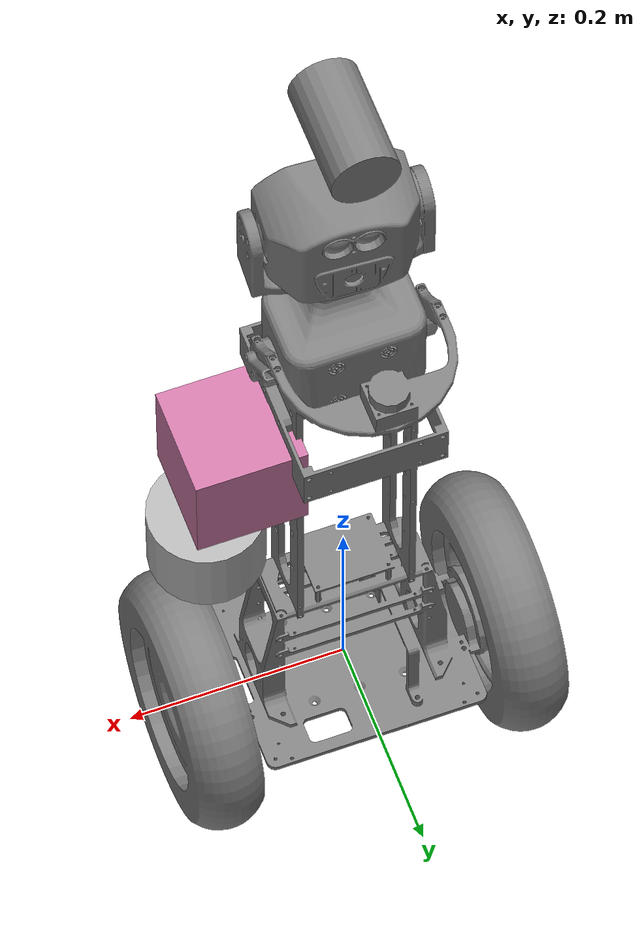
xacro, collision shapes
<?xml version="1.0" encoding="utf-8"?>
<robot name="final" xmlns:xacro="http://www.ros.org/wiki/xacro">
  <!-- Include robot URDF definitions -->
  <xacro:include filename="robot_urdf.xacro"/>

  <!-- Include transmission definitions -->
  <xacro:include filename="transmision.xacro"/>

  <!-- Include Gazebo plugins definitions -->
  <xacro:include filename="gazebo_plugins.xacro"/>
    <xacro:include filename="$(find velodyne_description)/urdf/VLP-16.urdf.xacro"/>
  <xacro:VLP-16 parent="H" name="velodyne" topic="/velodyne_points" hz="10" samples="360" gpu="true" min_angle="-3.14" max_angle="3.14" min_range="0.1">
    <origin xyz="0.125 0 0.25" rpy="0 0 1.57" />
  </xacro:VLP-16>
</robot>

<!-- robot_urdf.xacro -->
<robot xmlns:xacro="http://www.ros.org/wiki/xacro">
  <!-- Include the camera Xacro file -->
  <xacro:include filename="camera.xacro"/>

  <!-- Include the Hokuyo laser Xacro file -->
  <xacro:include filename="hokuyo_gpu.xacro"/>

  <!-- Define the camera macro with topic name -->
  <xacro:cam name="camera" parent="H" xyz="0 0 0.85" rpy="0 0 1.57" topic_name="camera/image_raw"/>

  <!-- Base link -->
  <link name="base_link">
    <inertial>
      <origin xyz="0 0 0" rpy="0 0 0"/>
      <mass value="1.36136077855937"/>
      <inertia ixx="0.081967334564842" ixy="-3.4210723680635E-06" ixz="-3.91284547047023E-05" iyy="0.0884786743192248" iyz="-0.00231861382459098" izz="0.0107270419219255"/>
    </inertial>
    <visual>
      <origin xyz="0 0 0" rpy="0 0 0"/>
      <geometry>
        <mesh filename="package://final/meshes/base_link.STL"/>
      </geometry>
      <material name="grey"/>
    </visual>
    <collision>
      <origin xyz="0 0 0" rpy="0 0 0"/>
      <geometry>
        <mesh filename="package://final/meshes/base_link.STL"/>
      </geometry>
    </collision>
  </link>

  <!-- Right wheel -->
  <link name="RW">
    <inertial>
      <origin xyz="0 0 0" rpy="0 0 0"/>
      <mass value="1.66362187408782"/>
      <inertia ixx="0.0149331440705645" ixy="-7.0310527599993E-19" ixz="-3.56400971635067E-17" iyy="0.00789937751316691" iyz="-1.07234377907859E-18" izz="0.00789937751316691"/>
    </inertial>
    <visual>
      <origin xyz="0 0 0" rpy="0 0 0"/>
      <geometry>
        <mesh filename="package://final/meshes/RW.STL"/>
      </geometry>
      <material name="grey"/>
    </visual>
    <collision>
      <origin xyz="0 0 0" rpy="0 0 0"/>
      <geometry>
        <mesh filename="package://final/meshes/RW.STL"/>
      </geometry>
    </collision>
  </link>
  <joint name="RWJ" type="continuous">
    <origin xyz="0 0 0" rpy="0 0 0"/>
    <parent link="base_link"/>
    <child link="RW"/>
    <axis xyz="-1 0 0"/>
    <hardwareInterface>EffortJointInterface</hardwareInterface>
  </joint>

  <!-- Left wheel -->
  <link name="LW">
    <inertial>
      <origin xyz="0 0 0" rpy="0 0 0"/>
      <mass value="1.66362187408782"/>
      <inertia ixx="0.0149331440705645" ixy="-1.65714609173788E-17" ixz="-3.18068539323175E-17" iyy="0.00789937751316691" iyz="8.92935627369466E-19" izz="0.00789937751316691"/>
    </inertial>
    <visual>
      <origin xyz="0 0 0" rpy="0 0 0"/>
      <geometry>
        <mesh filename="package://final/meshes/LW.STL"/>
      </geometry>
      <material name="grey"/>
    </visual>
    <collision>
      <origin xyz="0 0 0" rpy="0 0 0"/>
      <geometry>
        <mesh filename="package://final/meshes/LW.STL"/>
      </geometry>
    </collision>
  </link>
  <joint name="LWJ" type="continuous">
    <origin xyz="0 0 0" rpy="0 0 0"/>
    <parent link="base_link"/>
    <child link="LW"/>
    <axis xyz="-1 0 0"/>
    <hardwareInterface>EffortJointInterface</hardwareInterface>
  </joint>

  <!-- H link -->
  <link name="H">
    <inertial>
      <origin xyz="0 0 0" rpy="0 0 0"/>
      <mass value="0.44614352354859"/>
      <inertia ixx="0.000652294754639145" ixy="4.03458294640683E-05" ixz="3.77748545659174E-06" iyy="0.00124994464758745" iyz="-8.60157885805727E-06" izz="0.00109660895945627"/>
    </inertial>
    <visual>
      <origin xyz="0 0 0" rpy="0 0 0"/>
      <geometry>
        <mesh filename="package://final/meshes/H.STL"/>
      </geometry>
      <material name="grey"/>
    </visual>
    <collision>
      <origin xyz="0 0 0" rpy="0 0 0"/>
      <geometry>
        <mesh filename="package://final/meshes/H.STL"/>
      </geometry>
    </collision>
  </link>
  <joint name="HJ" type="continuous">
    <origin xyz="0 0 0" rpy="0 0 0"/>
    <parent link="base_link"/>
    <child link="H"/>
    <axis xyz="0 0 1"/>
    <hardwareInterface>PositionJointInterface</hardwareInterface>
  </joint>

  <!-- Camera link -->
  <link name="camera_link">
    <inertial>
      <origin xyz="0 0 0" rpy="0 0 1.57"/>
      <mass value="0.0"/>
      <inertia ixx="0.001" ixy="0" ixz="0" iyy="0.001" iyz="0" izz="0.001"/>
    </inertial>
    <visual>
      <origin xyz="0 0 0" rpy="0 0 1.57"/>
      <geometry>
        <box size="0 0 0"/>
      </geometry>
      <material name="grey">
        <color rgba="0.5 0.5 0.5 1"/>
      </material>
    </visual>
    <collision>
      <origin xyz="0 0 0" rpy="0 0 1.57"/>
      <geometry>
        <box size="0 0 0"/>
      </geometry>
    </collision>
  </link>
  <joint name="camera_joint" type="fixed">
    <origin xyz="0 0 1" rpy="0 0 0"/>
    <parent link="H"/>
    <child link="camera_link"/>
  </joint>

  <!-- Hokuyo Laser link -->
  <xacro:laser_gpu name="hokuyo_link" parent="H" xyz="0.1 0.0 0.4" rpy="0 0 0" meshes="$(find final)/meshes">
    <!-- Adjust xyz and rpy values as per your robot model -->
  </xacro:laser_gpu>
</robot>

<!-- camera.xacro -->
<robot xmlns:xacro="http://www.ros.org/wiki/xacro">

  <!-- Camera -->
  <xacro:macro name="cam" params="name parent xyz rpy topic_name">

    <joint name="${parent}_${name}_joint" type="fixed">
      <axis xyz="0 0 1" />
      <origin xyz="${xyz}" rpy="${rpy}"/>
      <parent link="${parent}"/>
      <child link="${name}"/>
    </joint>

    <!-- Camera -->
    <link name="${name}">
      <inertial>
        <mass value="1e-5" />
        <origin xyz="0 0 0" rpy="0 0 0"/>
        <inertia ixx="1e-6" ixy="0" ixz="0" iyy="1e-6" iyz="0" izz="1e-6" />
      </inertial>
      <visual>
        <origin xyz="0 0 0" rpy="0 1.57 0"/>
        <geometry>
          <cylinder radius="0.03" length="0.1"/>
        </geometry>
        <material name="grey"/>
      </visual>
      <collision>
        <origin xyz="0 0 0" rpy="0 1.57 0"/>
        <geometry>
          <cylinder radius="0.03" length="0.1"/>
        </geometry>
      </collision>
    </link>
    <gazebo reference="${name}">
      <material value="Gazebo/Grey"/>
    </gazebo>

    <gazebo reference="${name}">
      <sensor type="camera" name="camera1">
        <update_rate>30.0</update_rate>
        <camera name="head">
          <horizontal_fov>1.92</horizontal_fov>
          <image>
            <width>512</width>
            <height>256</height>
            <format>R8G8B8</format>
          </image>
          <clip>
            <near>0.02</near>
            <far>300</far>
          </clip>
          <noise>
            <type>gaussian</type>
            <mean>0.0</mean>
            <stddev>0.007</stddev>
          </noise>
        </camera>
        <plugin name="camera_controller" filename="libgazebo_ros_camera.so">
          <robotNamespace></robotNamespace>
          <alwaysOn>true</alwaysOn>
          <updateRate>0.0</updateRate>
          <cameraName>${name}</cameraName>
          <imageTopicName>${topic_name}</imageTopicName>
          <cameraInfoTopicName>camera_info</cameraInfoTopicName>
          <frameName>${name}</frameName>
          <hackBaseline>0.07</hackBaseline>
          <distortionK1>0.0</distortionK1>
          <distortionK2>0.0</distortionK2>
          <distortionK3>0.0</distortionK3>
          <distortionT1>0.0</distortionT1>
          <distortionT2>0.0</distortionT2>
        </plugin>
      </sensor>
    </gazebo>

  </xacro:macro>
</robot>

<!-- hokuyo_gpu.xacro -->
<robot xmlns:xacro="http://www.ros.org/wiki/xacro">

<!-- Front Laser -->
<xacro:macro name="laser_gpu" params="name parent xyz rpy meshes" >

  <joint name="${parent}_${name}_joint" type="fixed">
      <axis xyz="0 0 1" />
      <origin xyz="${xyz}" rpy="${rpy}"/>
      <parent link="${parent}"/>
      <child link="${name}"/>
    </joint>

    <link name="${name}">
      <collision>
        <origin xyz="0 0 0" rpy="0 0 0"/>
        <geometry>
          <box size="0.1 0.1 0.1"/>
        </geometry>
      </collision>
      <visual>
        <origin xyz="0 0 0" rpy="0 0 0"/>
        <geometry>
          <mesh filename="package://final/meshes/hokuyo.dae"/>
        </geometry>
      </visual>
      <inertial>
        <mass value="1e-5" />
        <origin xyz="0 0 0" rpy="0 0 0"/>
        <inertia ixx="1e-6" ixy="0" ixz="0" iyy="1e-6" iyz="0" izz="1e-6" />
      </inertial>
    </link>

    <gazebo reference="${name}">
    <sensor type="gpu_ray" name="head_hokuyo_sensor">
      <pose>0 0 0 0 0 0</pose>
      <always_on>1</always_on>
      <update_rate>30</update_rate>
      <visualize>true</visualize>
      <ray>
        <scan>
          <horizontal>
            <resolution>1</resolution>
            <max_angle>2.0944</max_angle> <!-- 120 Degree -->
            <min_angle>-2.0944</min_angle> <!-- -120 Degree -->
            <samples>683</samples>
          </horizontal>
        </scan>
        <range>
          <min>0.05</min>
          <max>100</max>
          <resolution>0.01</resolution>
        </range>
        <noise>
          <type>gaussian</type>
          <mean>0.0</mean>
          <stddev>0.01</stddev>
        </noise>
      </ray>
      <plugin name="gazebo_ros_head_hokuyo_controller" filename="libgazebo_ros_gpu_laser.so">
        <robotNamespace></robotNamespace>
        <topicName>scan</topicName> <!-- Specify the topic name here -->
        <frameName>${name}</frameName>
      </plugin>
    </sensor>
    </gazebo>

</xacro:macro>

</robot>

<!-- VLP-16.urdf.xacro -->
<robot xmlns:xacro="http://www.ros.org/wiki/xacro" name="VLP-16">
  <xacro:property name="M_PI" value="3.1415926535897931" />
  <xacro:macro name="VLP-16" params="*origin parent:=base_link name:=velodyne topic:=/velodyne_points hz:=10 lasers:=16 samples:=1875 collision_range:=0.3 min_range:=0.9 max_range:=130.0 noise:=0.008 min_angle:=-${M_PI} max_angle:=${M_PI} gpu:=false">

    <joint name="${name}_base_mount_joint" type="fixed">
      <xacro:insert_block name="origin" />
      <parent link="${parent}"/>
      <child link="${name}_base_link"/>
    </joint>

    <link name="${name}_base_link">
      <inertial>
        <mass value="0"/>
        <origin xyz="0 0 0.03585"/>
        <inertia ixx="${(0.01 * (3.0*0.0516*0.0516 + 0.0717*0.0717)) / 12.0}" ixy="0" ixz="0"
          iyy="${(0.01 * (3.0*0.0516*0.0516 + 0.0717*0.0717)) / 12.0}" iyz="0"
          izz="${0.5 * 0.01 * (0.0516*0.0516)}"/>
      </inertial>
      <visual>
        <geometry>
          <mesh filename="package://velodyne_description/meshes/VLP16_base_1.dae" />
        </geometry>
      </visual>
      <visual>
        <geometry>
          <mesh filename="package://velodyne_description/meshes/VLP16_base_2.dae" />
        </geometry>
      </visual>
      <collision>
        <origin rpy="0 0 0" xyz="0 0 0.03585"/>
        <geometry>
          <cylinder radius="0.0516" length="0.0717"/>
        </geometry>
      </collision>
    </link>

    <joint name="${name}_base_scan_joint" type="fixed" >
      <origin xyz="0 0 0.0377" rpy="0 0 0" />
      <parent link="${name}_base_link" />
      <child link="${name}"/>
    </joint>

    <link name="${name}">
      <inertial>
        <mass value="0"/>
        <origin xyz="0 0 0"/>
        <inertia ixx="1e-7" ixy="0" ixz="0" iyy="1e-7" iyz="0" izz="1e-7"/>
      </inertial>
      <visual>
        <origin xyz="0 0 -0.0377" />
        <geometry>
          <mesh filename="package://velodyne_description/meshes/VLP16_scan.dae" />
        </geometry>
      </visual>
    </link>

    <!-- Gazebo requires the velodyne_gazebo_plugins package -->
    <gazebo reference="${name}">
      <xacro:if value="${gpu}">
        <sensor type="gpu_ray" name="${name}-VLP16">
          <pose>0 0 0 0 0 0</pose>
          <visualize>false</visualize>
          <update_rate>${hz}</update_rate>
          <ray>
            <scan>
              <horizontal>
                <samples>${samples}</samples>
                <resolution>1</resolution>
                <min_angle>${min_angle}</min_angle>
                <max_angle>${max_angle}</max_angle>
              </horizontal>
              <vertical>
                <samples>${lasers}</samples>
                <resolution>1</resolution>
                <min_angle>-${15.0*M_PI/180.0}</min_angle>
                <max_angle> ${15.0*M_PI/180.0}</max_angle>
              </vertical>
            </scan>
            <range>
              <min>${collision_range}</min>
              <max>${max_range+1}</max>
              <resolution>0.001</resolution>
            </range>
            <noise>
              <type>gaussian</type>
              <mean>0.0</mean>
              <stddev>0.0</stddev>
            </noise>
          </ray>
          <plugin name="gazebo_ros_laser_controller" filename="libgazebo_ros_velodyne_gpu_laser.so">
            <topicName>${topic}</topicName>
            <frameName>${name}</frameName>
            <min_range>${min_range}</min_range>
            <max_range>${max_range}</max_range>
            <gaussianNoise>${noise}</gaussianNoise>
          </plugin>
        </sensor>
      </xacro:if>
      <xacro:unless value="${gpu}">
        <sensor type="ray" name="${name}-VLP16">
          <pose>0 0 0 0 0 0</pose>
          <visualize>false</visualize>
          <update_rate>${hz}</update_rate>
          <ray>
            <scan>
              <horizontal>
                <samples>${samples}</samples>
                <resolution>1</resolution>
                <min_angle>${min_angle}</min_angle>
                <max_angle>${max_angle}</max_angle>
              </horizontal>
              <vertical>
                <samples>${lasers}</samples>
                <resolution>1</resolution>
                <min_angle>-${15.0*M_PI/180.0}</min_angle>
                <max_angle> ${15.0*M_PI/180.0}</max_angle>
              </vertical>
            </scan>
            <range>
              <min>${collision_range}</min>
              <max>${max_range+1}</max>
              <resolution>0.001</resolution>
            </range>
            <noise>
              <type>gaussian</type>
              <mean>0.0</mean>
              <stddev>0.0</stddev>
            </noise>
          </ray>
          <plugin name="gazebo_ros_laser_controller" filename="libgazebo_ros_velodyne_laser.so">
            <topicName>${topic}</topicName>
            <frameName>${name}</frameName>
            <min_range>${min_range}</min_range>
            <max_range>${max_range}</max_range>
            <gaussianNoise>${noise}</gaussianNoise>
          </plugin>
        </sensor>
      </xacro:unless>
    </gazebo>

  </xacro:macro>
</robot>
